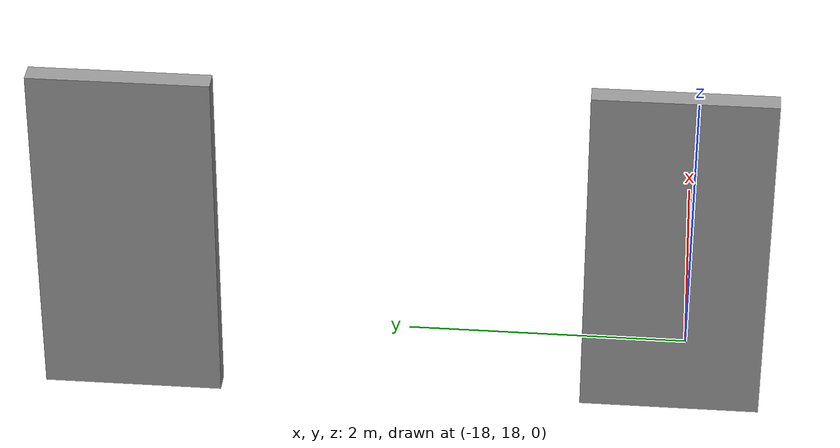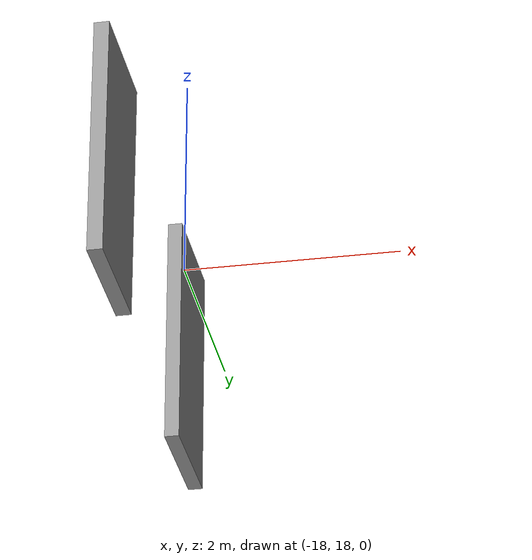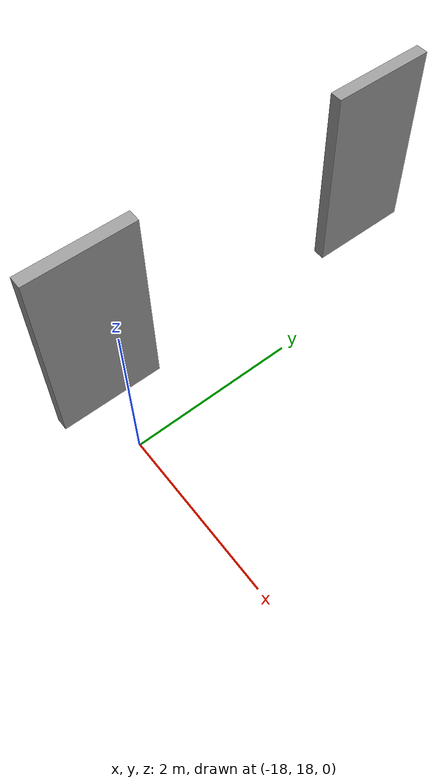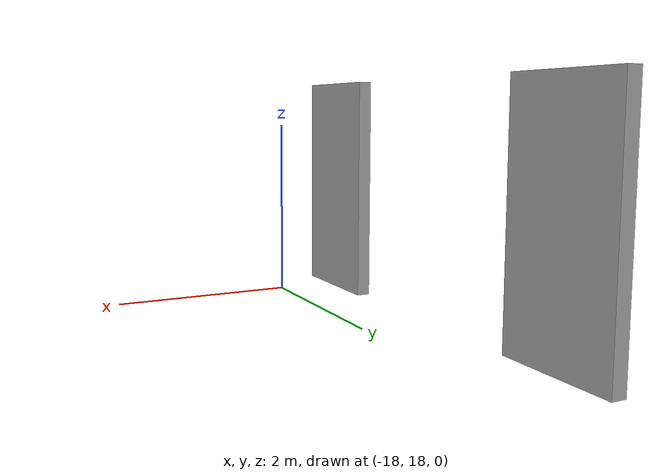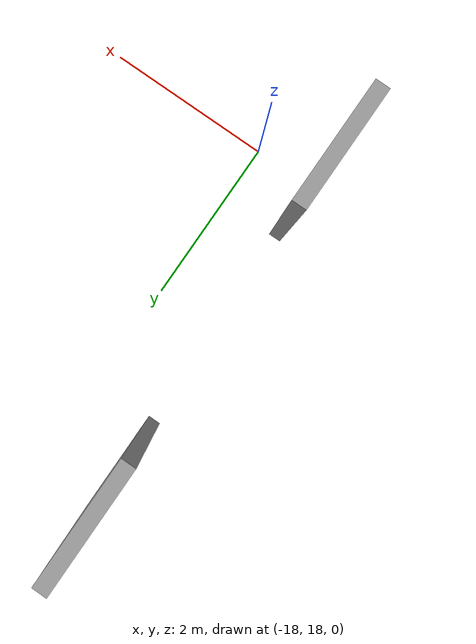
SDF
<?xml version='1.0'?>
<sdf version='1.6'>
  <model name='elevator_1.world'>
    <pose frame=''>-18.7606 20.0004 0 0 -0 0</pose>
    <link name='Wall_2'>
      <collision name='Wall_2_Collision'>
        <geometry>
          <box>
            <size>1.25 0.15 2.5</size>
          </box>
        </geometry>
        <pose frame=''>0 0 1.25 0 -0 0</pose>
      </collision>
      <visual name='Wall_2_Visual'>
        <pose frame=''>0 0 1.25 0 -0 0</pose>
        <geometry>
          <box>
            <size>1.25 0.15 2.5</size>
          </box>
        </geometry>
        <material>
          <script>
            <uri>file://media/materials/scripts/gazebo.material</uri>
            <name>Gazebo/Grey</name>
          </script>
          <ambient>1 1 1 1</ambient>
        </material>
      </visual>
      <pose frame=''>0.029051 -1.89352 0 0 -0 1.5708</pose>
    </link>
    <link name='Wall_4'>
      <collision name='Wall_4_Collision'>
        <geometry>
          <box>
            <size>1.25 0.15 2.5</size>
          </box>
        </geometry>
        <pose frame=''>0 0 1.25 0 -0 0</pose>
      </collision>
      <visual name='Wall_4_Visual'>
        <pose frame=''>0 0 1.25 0 -0 0</pose>
        <geometry>
          <box>
            <size>1.25 0.15 2.5</size>
          </box>
        </geometry>
        <material>
          <script>
            <uri>file://media/materials/scripts/gazebo.material</uri>
            <name>Gazebo/Grey</name>
          </script>
          <ambient>1 1 1 1</ambient>
        </material>
      </visual>
      <pose frame=''>-0.029051 1.89352 0 0 0 -1.5708</pose>
    </link>
    <static>1</static>
  </model>
</sdf>
